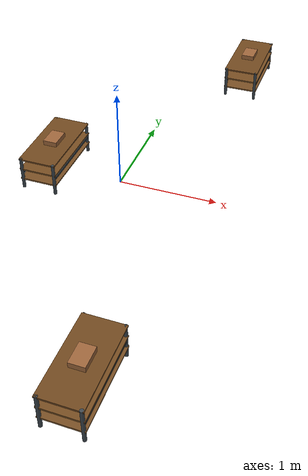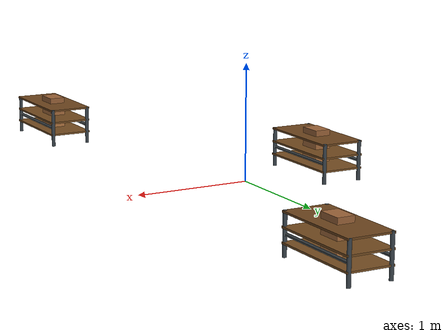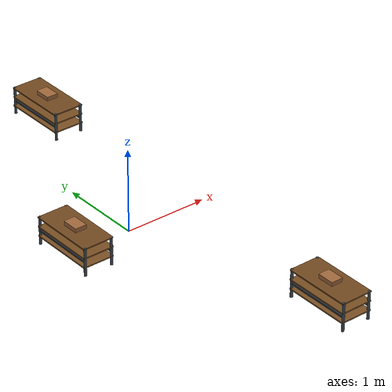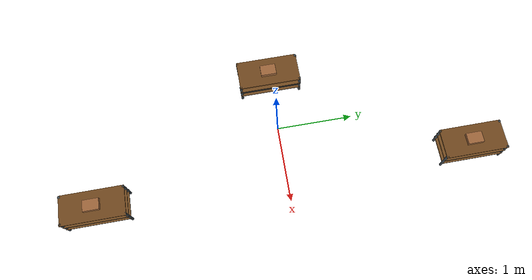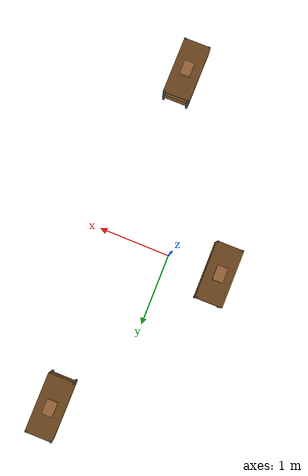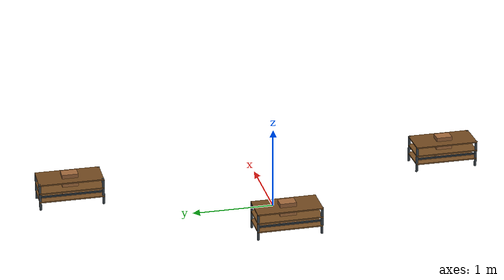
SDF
<sdf version="1.8">
 <world name="warehouse">
  <physics name="1ms" type="ignored">
   <max_step_size>0.001</max_step_size>
   <real_time_factor>1.0</real_time_factor>
  </physics>
  <plugin filename="gz-sim-physics-system" name="gz::sim::systems::Physics"/>
  <plugin filename="gz-sim-user-commands-system" name="gz::sim::systems::UserCommands"/>
  <plugin filename="gz-sim-scene-broadcaster-system" name="gz::sim::systems::SceneBroadcaster"/>
  <plugin filename="gz-sim-imu-system" name="gz::sim::systems::Imu"/>
  <plugin filename="gz-sim-sensors-system" name="gz::sim::systems::Sensors">
   <render_engine>ogre2</render_engine>
  </plugin>
  <light name="sun" type="directional">
   <pose>0 0 10 0 0 0</pose>
   <diffuse>0.9 0.9 0.9 1</diffuse>
   <specular>0.2 0.2 0.2 1</specular>
   <direction>-0.5 0.2 -0.9</direction>
  </light>
  <light name="Warehouse_CeilingLight_003" type="point">
   <pose>0 0 4.5 0 0 0</pose>
   <diffuse>0.5 0.5 0.5 1</diffuse>
   <specular>0.2 0.2 0.2 1</specular>
   <attenuation>
    <range>40</range>
    <constant>0.3</constant>
    <linear>0.01</linear>
    <quadratic>0.001</quadratic>
   </attenuation>
   <direction>0.1 0.1 -1</direction>
  </light>
  <model name="ground_collision">
   <static>true</static>
   <link name="link">
    <collision name="collision">
     <geometry><plane><normal>0 0 1</normal><size>30 30</size></plane></geometry>
    </collision>
   </link>
  </model>
  <model name="warehouse_bounds_collision">
   <static>true</static>
   <link name="link">
    <collision name="wall_north">
     <pose>0.0 4.80 0.75 0 0 0</pose>
     <geometry><box><size>5.80 0.12 1.5</size></box></geometry>
    </collision>
    <collision name="wall_south">
     <pose>0.0 -4.80 0.75 0 0 0</pose>
     <geometry><box><size>5.80 0.12 1.5</size></box></geometry>
    </collision>
    <collision name="wall_west">
     <pose>-2.90 0.0 0.75 0 0 0</pose>
     <geometry><box><size>0.12 9.60 1.5</size></box></geometry>
    </collision>
    <collision name="wall_east">
     <pose>2.90 0.0 0.75 0 0 0</pose>
     <geometry><box><size>0.12 9.60 1.5</size></box></geometry>
    </collision>
   </link>
  </model>
  <model name="scan_shelf_wp0_left">
   <static>true</static>
   <pose>0.70 -2.40 0 0 0 1.570796</pose>
   <link name="link">
    <collision name="rack_collision">
     <pose>0 0 0.16915 0 0 0</pose>
     <geometry><box><size>0.82 0.40 0.3383</size></box></geometry>
    </collision>
    <visual name="pillar_fl">
     <pose>0.39 0.17 0.16915 0 0 0</pose>
     <visibility_flags>0x01</visibility_flags>
     <geometry><cylinder><radius>0.016</radius><length>0.3383</length></cylinder></geometry>
     <material>
      <ambient>0.24 0.28 0.31 1</ambient>
      <diffuse>0.24 0.28 0.31 1</diffuse>
      <specular>0.08 0.08 0.08 1</specular>
     </material>
    </visual>
    <visual name="pillar_fr">
     <pose>0.39 -0.17 0.16915 0 0 0</pose>
     <visibility_flags>0x01</visibility_flags>
     <geometry><cylinder><radius>0.016</radius><length>0.3383</length></cylinder></geometry>
     <material>
      <ambient>0.24 0.28 0.31 1</ambient>
      <diffuse>0.24 0.28 0.31 1</diffuse>
      <specular>0.08 0.08 0.08 1</specular>
     </material>
    </visual>
    <visual name="pillar_rl">
     <pose>-0.39 0.17 0.16915 0 0 0</pose>
     <visibility_flags>0x01</visibility_flags>
     <geometry><cylinder><radius>0.016</radius><length>0.3383</length></cylinder></geometry>
     <material>
      <ambient>0.24 0.28 0.31 1</ambient>
      <diffuse>0.24 0.28 0.31 1</diffuse>
      <specular>0.08 0.08 0.08 1</specular>
     </material>
    </visual>
    <visual name="pillar_rr">
     <pose>-0.39 -0.17 0.16915 0 0 0</pose>
     <visibility_flags>0x01</visibility_flags>
     <geometry><cylinder><radius>0.016</radius><length>0.3383</length></cylinder></geometry>
     <material>
      <ambient>0.24 0.28 0.31 1</ambient>
      <diffuse>0.24 0.28 0.31 1</diffuse>
      <specular>0.08 0.08 0.08 1</specular>
     </material>
    </visual>
    <visual name="brace_front">
     <pose>0.0 -0.17 0.16915 0 0 0</pose>
     <visibility_flags>0x01</visibility_flags>
     <geometry><box><size>0.80 0.02 0.02</size></box></geometry>
     <material><ambient>0.19 0.22 0.24 1</ambient><diffuse>0.19 0.22 0.24 1</diffuse></material>
    </visual>
    <visual name="brace_back">
     <pose>0.0 0.17 0.16915 0 0 0</pose>
     <visibility_flags>0x01</visibility_flags>
     <geometry><box><size>0.80 0.02 0.02</size></box></geometry>
     <material><ambient>0.19 0.22 0.24 1</ambient><diffuse>0.19 0.22 0.24 1</diffuse></material>
    </visual>
    <visual name="deck_1_v">
     <pose>0.0 0.0 0.1048 0 0 0</pose>
     <visibility_flags>0x01</visibility_flags>
     <geometry><box><size>0.80 0.38 0.016</size></box></geometry>
     <material>
      <ambient>0.47 0.31 0.14 1</ambient>
      <diffuse>0.47 0.31 0.14 1</diffuse>
      <specular>0.04 0.03 0.02 1</specular>
     </material>
    </visual>
    <visual name="deck_2_v">
     <pose>0.0 0.0 0.2175 0 0 0</pose>
     <visibility_flags>0x01</visibility_flags>
     <geometry><box><size>0.80 0.38 0.016</size></box></geometry>
     <material>
      <ambient>0.46 0.30 0.13 1</ambient>
      <diffuse>0.46 0.30 0.13 1</diffuse>
      <specular>0.04 0.03 0.02 1</specular>
     </material>
    </visual>
    <visual name="deck_3_v">
     <pose>0.0 0.0 0.3303 0 0 0</pose>
     <visibility_flags>0x01</visibility_flags>
     <geometry><box><size>0.80 0.38 0.016</size></box></geometry>
     <material>
      <ambient>0.44 0.28 0.12 1</ambient>
      <diffuse>0.44 0.28 0.12 1</diffuse>
      <specular>0.04 0.03 0.02 1</specular>
     </material>
    </visual>
    <visual name="box_1_v">
     <pose>0.0 0.0 0.1378 0 0 0</pose>
     <visibility_flags>0x01</visibility_flags>
     <geometry><box><size>0.20 0.14 0.05</size></box></geometry>
     <material><ambient>0.72 0.48 0.27 1</ambient><diffuse>0.72 0.48 0.27 1</diffuse></material>
    </visual>
    <visual name="box_2_v">
     <pose>0.0 0.0 0.2505 0 0 0</pose>
     <visibility_flags>0x01</visibility_flags>
     <geometry><box><size>0.20 0.14 0.05</size></box></geometry>
     <material><ambient>0.67 0.44 0.25 1</ambient><diffuse>0.67 0.44 0.25 1</diffuse></material>
    </visual>
    <visual name="box_3_v">
     <pose>0.0 0.0 0.3633 0 0 0</pose>
     <visibility_flags>0x01</visibility_flags>
     <geometry><box><size>0.20 0.14 0.05</size></box></geometry>
     <material><ambient>0.62 0.40 0.23 1</ambient><diffuse>0.62 0.40 0.23 1</diffuse></material>
    </visual>
   </link>
  </model>
  <model name="scan_shelf_wp1_right">
   <static>true</static>
   <pose>-0.70 0.00 0 0 0 1.570796</pose>
   <link name="link">
    <collision name="rack_collision">
     <pose>0 0 0.16915 0 0 0</pose>
     <geometry><box><size>0.82 0.40 0.3383</size></box></geometry>
    </collision>
    <visual name="pillar_fl">
     <pose>0.39 0.17 0.16915 0 0 0</pose>
     <visibility_flags>0x01</visibility_flags>
     <geometry><cylinder><radius>0.016</radius><length>0.3383</length></cylinder></geometry>
     <material>
      <ambient>0.24 0.28 0.31 1</ambient>
      <diffuse>0.24 0.28 0.31 1</diffuse>
      <specular>0.08 0.08 0.08 1</specular>
     </material>
    </visual>
    <visual name="pillar_fr">
     <pose>0.39 -0.17 0.16915 0 0 0</pose>
     <visibility_flags>0x01</visibility_flags>
     <geometry><cylinder><radius>0.016</radius><length>0.3383</length></cylinder></geometry>
     <material>
      <ambient>0.24 0.28 0.31 1</ambient>
      <diffuse>0.24 0.28 0.31 1</diffuse>
      <specular>0.08 0.08 0.08 1</specular>
     </material>
    </visual>
    <visual name="pillar_rl">
     <pose>-0.39 0.17 0.16915 0 0 0</pose>
     <visibility_flags>0x01</visibility_flags>
     <geometry><cylinder><radius>0.016</radius><length>0.3383</length></cylinder></geometry>
     <material>
      <ambient>0.24 0.28 0.31 1</ambient>
      <diffuse>0.24 0.28 0.31 1</diffuse>
      <specular>0.08 0.08 0.08 1</specular>
     </material>
    </visual>
    <visual name="pillar_rr">
     <pose>-0.39 -0.17 0.16915 0 0 0</pose>
     <visibility_flags>0x01</visibility_flags>
     <geometry><cylinder><radius>0.016</radius><length>0.3383</length></cylinder></geometry>
     <material>
      <ambient>0.24 0.28 0.31 1</ambient>
      <diffuse>0.24 0.28 0.31 1</diffuse>
      <specular>0.08 0.08 0.08 1</specular>
     </material>
    </visual>
    <visual name="brace_front">
     <pose>0.0 -0.17 0.16915 0 0 0</pose>
     <visibility_flags>0x01</visibility_flags>
     <geometry><box><size>0.80 0.02 0.02</size></box></geometry>
     <material><ambient>0.19 0.22 0.24 1</ambient><diffuse>0.19 0.22 0.24 1</diffuse></material>
    </visual>
    <visual name="brace_back">
     <pose>0.0 0.17 0.16915 0 0 0</pose>
     <visibility_flags>0x01</visibility_flags>
     <geometry><box><size>0.80 0.02 0.02</size></box></geometry>
     <material><ambient>0.19 0.22 0.24 1</ambient><diffuse>0.19 0.22 0.24 1</diffuse></material>
    </visual>
    <visual name="deck_1_v">
     <pose>0.0 0.0 0.1048 0 0 0</pose>
     <visibility_flags>0x01</visibility_flags>
     <geometry><box><size>0.80 0.38 0.016</size></box></geometry>
     <material>
      <ambient>0.47 0.31 0.14 1</ambient>
      <diffuse>0.47 0.31 0.14 1</diffuse>
      <specular>0.04 0.03 0.02 1</specular>
     </material>
    </visual>
    <visual name="deck_2_v">
     <pose>0.0 0.0 0.2175 0 0 0</pose>
     <visibility_flags>0x01</visibility_flags>
     <geometry><box><size>0.80 0.38 0.016</size></box></geometry>
     <material>
      <ambient>0.46 0.30 0.13 1</ambient>
      <diffuse>0.46 0.30 0.13 1</diffuse>
      <specular>0.04 0.03 0.02 1</specular>
     </material>
    </visual>
    <visual name="deck_3_v">
     <pose>0.0 0.0 0.3303 0 0 0</pose>
     <visibility_flags>0x01</visibility_flags>
     <geometry><box><size>0.80 0.38 0.016</size></box></geometry>
     <material>
      <ambient>0.44 0.28 0.12 1</ambient>
      <diffuse>0.44 0.28 0.12 1</diffuse>
      <specular>0.04 0.03 0.02 1</specular>
     </material>
    </visual>
    <visual name="box_1_v">
     <pose>0.0 0.0 0.1378 0 0 0</pose>
     <visibility_flags>0x01</visibility_flags>
     <geometry><box><size>0.20 0.14 0.05</size></box></geometry>
     <material><ambient>0.72 0.48 0.27 1</ambient><diffuse>0.72 0.48 0.27 1</diffuse></material>
    </visual>
    <visual name="box_2_v">
     <pose>0.0 0.0 0.2505 0 0 0</pose>
     <visibility_flags>0x01</visibility_flags>
     <geometry><box><size>0.20 0.14 0.05</size></box></geometry>
     <material><ambient>0.67 0.44 0.25 1</ambient><diffuse>0.67 0.44 0.25 1</diffuse></material>
    </visual>
    <visual name="box_3_v">
     <pose>0.0 0.0 0.3633 0 0 0</pose>
     <visibility_flags>0x01</visibility_flags>
     <geometry><box><size>0.20 0.14 0.05</size></box></geometry>
     <material><ambient>0.62 0.40 0.23 1</ambient><diffuse>0.62 0.40 0.23 1</diffuse></material>
    </visual>
   </link>
  </model>
  <model name="scan_shelf_wp2_left">
   <static>true</static>
   <pose>0.70 2.40 0 0 0 1.570796</pose>
   <link name="link">
    <collision name="rack_collision">
     <pose>0 0 0.16915 0 0 0</pose>
     <geometry><box><size>0.82 0.40 0.3383</size></box></geometry>
    </collision>
    <visual name="pillar_fl">
     <pose>0.39 0.17 0.16915 0 0 0</pose>
     <visibility_flags>0x01</visibility_flags>
     <geometry><cylinder><radius>0.016</radius><length>0.3383</length></cylinder></geometry>
     <material>
      <ambient>0.24 0.28 0.31 1</ambient>
      <diffuse>0.24 0.28 0.31 1</diffuse>
      <specular>0.08 0.08 0.08 1</specular>
     </material>
    </visual>
    <visual name="pillar_fr">
     <pose>0.39 -0.17 0.16915 0 0 0</pose>
     <visibility_flags>0x01</visibility_flags>
     <geometry><cylinder><radius>0.016</radius><length>0.3383</length></cylinder></geometry>
     <material>
      <ambient>0.24 0.28 0.31 1</ambient>
      <diffuse>0.24 0.28 0.31 1</diffuse>
      <specular>0.08 0.08 0.08 1</specular>
     </material>
    </visual>
    <visual name="pillar_rl">
     <pose>-0.39 0.17 0.16915 0 0 0</pose>
     <visibility_flags>0x01</visibility_flags>
     <geometry><cylinder><radius>0.016</radius><length>0.3383</length></cylinder></geometry>
     <material>
      <ambient>0.24 0.28 0.31 1</ambient>
      <diffuse>0.24 0.28 0.31 1</diffuse>
      <specular>0.08 0.08 0.08 1</specular>
     </material>
    </visual>
    <visual name="pillar_rr">
     <pose>-0.39 -0.17 0.16915 0 0 0</pose>
     <visibility_flags>0x01</visibility_flags>
     <geometry><cylinder><radius>0.016</radius><length>0.3383</length></cylinder></geometry>
     <material>
      <ambient>0.24 0.28 0.31 1</ambient>
      <diffuse>0.24 0.28 0.31 1</diffuse>
      <specular>0.08 0.08 0.08 1</specular>
     </material>
    </visual>
    <visual name="brace_front">
     <pose>0.0 -0.17 0.16915 0 0 0</pose>
     <visibility_flags>0x01</visibility_flags>
     <geometry><box><size>0.80 0.02 0.02</size></box></geometry>
     <material><ambient>0.19 0.22 0.24 1</ambient><diffuse>0.19 0.22 0.24 1</diffuse></material>
    </visual>
    <visual name="brace_back">
     <pose>0.0 0.17 0.16915 0 0 0</pose>
     <visibility_flags>0x01</visibility_flags>
     <geometry><box><size>0.80 0.02 0.02</size></box></geometry>
     <material><ambient>0.19 0.22 0.24 1</ambient><diffuse>0.19 0.22 0.24 1</diffuse></material>
    </visual>
    <visual name="deck_1_v">
     <pose>0.0 0.0 0.1048 0 0 0</pose>
     <visibility_flags>0x01</visibility_flags>
     <geometry><box><size>0.80 0.38 0.016</size></box></geometry>
     <material>
      <ambient>0.47 0.31 0.14 1</ambient>
      <diffuse>0.47 0.31 0.14 1</diffuse>
      <specular>0.04 0.03 0.02 1</specular>
     </material>
    </visual>
    <visual name="deck_2_v">
     <pose>0.0 0.0 0.2175 0 0 0</pose>
     <visibility_flags>0x01</visibility_flags>
     <geometry><box><size>0.80 0.38 0.016</size></box></geometry>
     <material>
      <ambient>0.46 0.30 0.13 1</ambient>
      <diffuse>0.46 0.30 0.13 1</diffuse>
      <specular>0.04 0.03 0.02 1</specular>
     </material>
    </visual>
    <visual name="deck_3_v">
     <pose>0.0 0.0 0.3303 0 0 0</pose>
     <visibility_flags>0x01</visibility_flags>
     <geometry><box><size>0.80 0.38 0.016</size></box></geometry>
     <material>
      <ambient>0.44 0.28 0.12 1</ambient>
      <diffuse>0.44 0.28 0.12 1</diffuse>
      <specular>0.04 0.03 0.02 1</specular>
     </material>
    </visual>
    <visual name="box_1_v">
     <pose>0.0 0.0 0.1378 0 0 0</pose>
     <visibility_flags>0x01</visibility_flags>
     <geometry><box><size>0.20 0.14 0.05</size></box></geometry>
     <material><ambient>0.72 0.48 0.27 1</ambient><diffuse>0.72 0.48 0.27 1</diffuse></material>
    </visual>
    <visual name="box_2_v">
     <pose>0.0 0.0 0.2505 0 0 0</pose>
     <visibility_flags>0x01</visibility_flags>
     <geometry><box><size>0.20 0.14 0.05</size></box></geometry>
     <material><ambient>0.67 0.44 0.25 1</ambient><diffuse>0.67 0.44 0.25 1</diffuse></material>
    </visual>
    <visual name="box_3_v">
     <pose>0.0 0.0 0.3633 0 0 0</pose>
     <visibility_flags>0x01</visibility_flags>
     <geometry><box><size>0.20 0.14 0.05</size></box></geometry>
     <material><ambient>0.62 0.40 0.23 1</ambient><diffuse>0.62 0.40 0.23 1</diffuse></material>
    </visual>
   </link>
  </model>
  <gravity>0 0 -9.81</gravity>
 </world>
</sdf>
